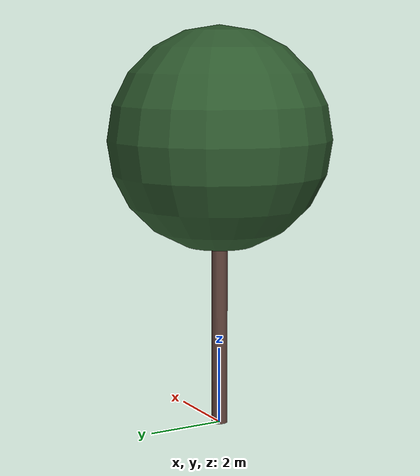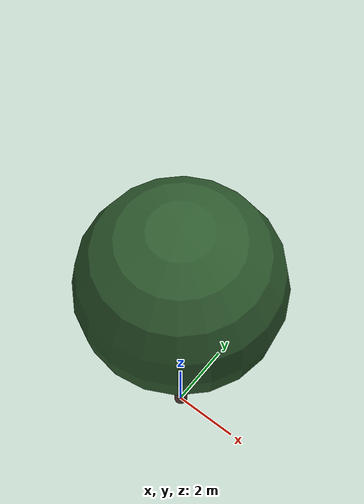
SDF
<?xml version="1.0" ?>
<sdf version="1.10">
  <model name="pin_parasol_00">
    <static>true</static>

    <!-- Tronc -->
    <link name="trunk">
      <pose>0 0 3.3179402215265705 0 0 0</pose>
      <visual name="trunk_visual">
        <geometry>
          <cylinder>
            <radius>0.20663112723459728</radius>
            <length>6.635880443053141</length>
          </cylinder>
        </geometry>
        <material>
          <ambient>0.36 0.25 0.22 1</ambient>
          <diffuse>0.36 0.25 0.22 1</diffuse>
          <specular>0.1 0.1 0.1 1</specular>
        </material>
      </visual>
      <collision name="trunk_collision">
        <geometry>
          <cylinder>
            <radius>0.20663112723459728</radius>
            <length>6.635880443053141</length>
          </cylinder>
        </geometry>
      </collision>
    </link>

    <!-- Feuillage -->
    <link name="crown">
      <pose>0 0 7.502836846456314 0 0 0</pose>
      <visual name="crown_visual">
        <geometry>
          <sphere>
              <radius>2.889854678010577</radius>
            </sphere>
        </geometry>
        <material>
          <ambient>0.18 0.35 0.18 1</ambient>
          <diffuse>0.18 0.35 0.18 1</diffuse>
          <specular>0.1 0.1 0.1 1</specular>
        </material>
      </visual>
      <collision name="crown_collision">
        <geometry>
          <sphere>
            <radius>2.3118837424084617</radius>
          </sphere>
        </geometry>
      </collision>
    </link>

    <!-- Joint tronc-feuillage -->
    <joint name="trunk_crown_joint" type="fixed">
      <parent>trunk</parent>
      <child>crown</child>
    </joint>

  </model>
</sdf>
